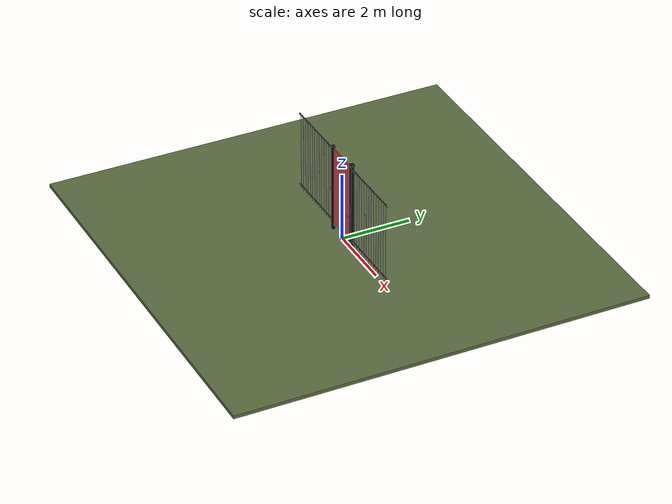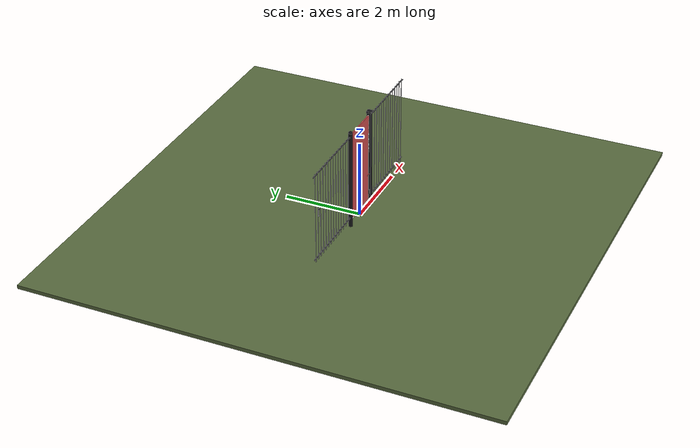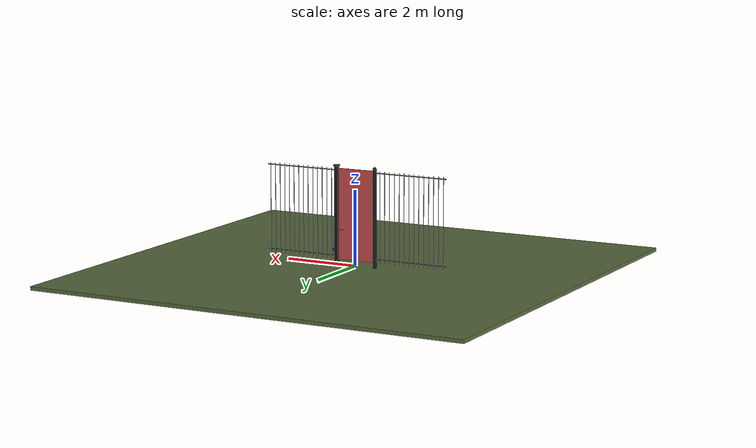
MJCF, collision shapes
<?xml version="1.0" ?>
<mujoco model="db0985_gate_swing_full">
  <compiler angle="radian" meshdir="../../hardware" texturedir="../../textures" autolimits="true" inertiafromgeom="false"/>
  <option timestep="0.002" integrator="implicitfast" cone="elliptic" impratio="10" noslip_iterations="3">
    <flag multiccd="enable"/>
  </option>
  <size memory="16M"/>
  <default>
    <geom condim="4" solref="0.005 1" solimp="0.95 0.99 0.001"/>
    <joint solreflimit="0.005 1" solimplimit="0.95 0.99 0.001"/>
    <tendon solreflimit="0.005 1"/>
    <equality solref="0.002 1"/>
  </default>
  <visual>
    <headlight ambient="0.4 0.4 0.4" diffuse="0.7 0.7 0.7" specular="0.2 0.2 0.2"/>
    <quality shadowsize="4096"/>
    <map znear="0.01" zfar="60"/>
  </visual>
  <asset>
    <mesh name="ring_cc5c941a8a" file="ring_cc5c941a8a.obj"/>
    <mesh name="strap_hinge_78d1bbb966" file="strap_hinge_78d1bbb966.obj"/>
    <material name="mat_floor" rgba="0.35 0.42 0.25 1" specular="0.2" shininess="0.15" reflectance="0"/>
    <material name="mat_wall" rgba="0.78 0.76 0.7 1" specular="0.2" shininess="0.1" reflectance="0"/>
    <material name="mat_leaf" rgba="0.93 0.93 0.91 1" specular="0.23" shininess="0.37" reflectance="0.02"/>
    <material name="mat_hinge" rgba="0.65 0.66 0.68 1" specular="0.74" shininess="0.5" reflectance="0.36"/>
    <material name="mat_op_wrought_iron" rgba="0.08 0.08 0.09 1" specular="0.56" shininess="0.25" reflectance="0.24"/>
    <material name="mat_frame" rgba="0.08 0.08 0.09 1" specular="0.56" shininess="0.25" reflectance="0.24"/>
    <material name="mat_bumper_stop" rgba="0.08 0.08 0.08 1" specular="0.2" shininess="0.1" reflectance="0"/>
    <material name="mat_stop_base" rgba="0.9 0.9 0.92 1" specular="0.8" shininess="0.9" reflectance="0.4"/>
    <texture name="skybox" type="skybox" builtin="gradient" rgb1="0.6 0.7 0.85" rgb2="0.9 0.92 0.95" width="256" height="256"/>
  </asset>
  <worldbody>
    <light name="sun" pos="1.5 -2.5 4" dir="-0.3 0.5 -0.8" directional="true" diffuse="0.8 0.8 0.8" specular="0.3 0.3 0.3" castshadow="true"/>
    <light name="fill" pos="-1.5 2.5 3" dir="0.3 -0.5 -0.7" directional="true" diffuse="0.35 0.35 0.4" castshadow="false"/>
    <camera name="robot_view" pos="0 -2.89375 2.02025" xyaxes="1 0 0 0 0.26963 0.962964" fovy="52"/>
    <camera name="far_view" pos="0 2.89375 2.02025" xyaxes="-1 0 0 0 -0.26963 0.962964" fovy="52"/>
    <camera name="iso" pos="2.19925 -2.43075 2.48325" xyaxes="0.741536 0.670913 0 -0.242917 0.268487 0.932151" fovy="46"/>
    <camera name="detail_handle" pos="0.572 -0.8445 1.22" xyaxes="0.97561 0.219512 0 -0.070934 0.315262 0.94635" fovy="38"/>
    <geom name="floor" type="box" size="6 6 0.05" pos="0 0 -0.05" material="mat_floor" group="0" contype="1" conaffinity="1" friction="0.8 0.005 0.0001" density="2400"/>
    <geom name="hinge_pintle_0" type="cylinder" size="0.008 0.02" pos="-0.503 0.05 0.274" material="mat_hinge" group="1" contype="0" conaffinity="0" density="7850"/>
    <geom name="hinge_pintle_1" type="cylinder" size="0.008 0.02" pos="-0.503 0.05 2.374" material="mat_hinge" group="1" contype="0" conaffinity="0" density="7850"/>
    <geom name="post_hinge" type="cylinder" size="0.05 1.3" pos="-0.556 0 1.3" material="mat_frame" group="0" contype="1" conaffinity="1" friction="0.6 0.005 0.0001" density="800"/>
    <geom name="post_hinge_cap" type="sphere" size="0.05" pos="-0.556 0 2.6" material="mat_frame" group="1" contype="0" conaffinity="0" density="800"/>
    <geom name="post_latch" type="box" size="0.05 0.05 1.3" pos="0.556 0 1.3" material="mat_frame" group="0" contype="1" conaffinity="1" friction="0.6 0.005 0.0001" density="800"/>
    <geom name="post_latch_cap" type="box" size="0.065 0.065 0.02" pos="0.556 0 2.62" material="mat_frame" group="1" contype="0" conaffinity="0" density="800"/>
    <geom name="gate_stop" type="box" size="0.02 0.012 0.06" pos="0.486 -0.0245 0.4" material="mat_frame" group="0" contype="1" conaffinity="1" friction="0.6 0.005 0.0001" density="800"/>
    <geom name="door_stop_base" type="cylinder" size="0.022 0.003" pos="-0.4885 0.9 0.003" material="mat_stop_base" group="0" contype="1" conaffinity="1" friction="0.6 0.005 0.0001" density="7850"/>
    <geom name="door_stop_post" type="cylinder" size="0.012 0.092" pos="-0.4885 0.9 0.098" material="mat_stop_base" group="0" contype="1" conaffinity="1" friction="0.6 0.005 0.0001" density="7850"/>
    <geom name="door_stop_bumper" type="cylinder" size="0.022 0.02" pos="-0.4885 0.9 0.21" material="mat_bumper_stop" group="0" contype="1" conaffinity="1" friction="0.6 0.005 0.0001" density="1100"/>
    <geom name="fence_bar_l_0" type="cylinder" size="0.008 1.2" pos="-0.706 0 1.35" material="mat_frame" group="0" contype="1" conaffinity="1" friction="0.6 0.005 0.0001" density="7850"/>
    <geom name="fence_bar_l_1" type="cylinder" size="0.008 1.2" pos="-0.846 0 1.35" material="mat_frame" group="0" contype="1" conaffinity="1" friction="0.6 0.005 0.0001" density="7850"/>
    <geom name="fence_bar_l_2" type="cylinder" size="0.008 1.2" pos="-0.986 0 1.35" material="mat_frame" group="0" contype="1" conaffinity="1" friction="0.6 0.005 0.0001" density="7850"/>
    <geom name="fence_bar_l_3" type="cylinder" size="0.008 1.2" pos="-1.126 0 1.35" material="mat_frame" group="0" contype="1" conaffinity="1" friction="0.6 0.005 0.0001" density="7850"/>
    <geom name="fence_bar_l_4" type="cylinder" size="0.008 1.2" pos="-1.266 0 1.35" material="mat_frame" group="0" contype="1" conaffinity="1" friction="0.6 0.005 0.0001" density="7850"/>
    <geom name="fence_bar_l_5" type="cylinder" size="0.008 1.2" pos="-1.406 0 1.35" material="mat_frame" group="0" contype="1" conaffinity="1" friction="0.6 0.005 0.0001" density="7850"/>
    <geom name="fence_bar_l_6" type="cylinder" size="0.008 1.2" pos="-1.546 0 1.35" material="mat_frame" group="0" contype="1" conaffinity="1" friction="0.6 0.005 0.0001" density="7850"/>
    <geom name="fence_bar_l_7" type="cylinder" size="0.008 1.2" pos="-1.686 0 1.35" material="mat_frame" group="0" contype="1" conaffinity="1" friction="0.6 0.005 0.0001" density="7850"/>
    <geom name="fence_bar_l_8" type="cylinder" size="0.008 1.2" pos="-1.826 0 1.35" material="mat_frame" group="0" contype="1" conaffinity="1" friction="0.6 0.005 0.0001" density="7850"/>
    <geom name="fence_bar_l_9" type="cylinder" size="0.008 1.2" pos="-1.966 0 1.35" material="mat_frame" group="0" contype="1" conaffinity="1" friction="0.6 0.005 0.0001" density="7850"/>
    <geom name="fence_bar_l_10" type="cylinder" size="0.008 1.2" pos="-2.106 0 1.35" material="mat_frame" group="0" contype="1" conaffinity="1" friction="0.6 0.005 0.0001" density="7850"/>
    <geom name="fence_bar_l_11" type="cylinder" size="0.008 1.2" pos="-2.246 0 1.35" material="mat_frame" group="0" contype="1" conaffinity="1" friction="0.6 0.005 0.0001" density="7850"/>
    <geom name="fence_bar_l_12" type="cylinder" size="0.008 1.2" pos="-2.386 0 1.35" material="mat_frame" group="0" contype="1" conaffinity="1" friction="0.6 0.005 0.0001" density="7850"/>
    <geom name="fence_bar_l_13" type="cylinder" size="0.008 1.2" pos="-2.526 0 1.35" material="mat_frame" group="0" contype="1" conaffinity="1" friction="0.6 0.005 0.0001" density="7850"/>
    <geom name="fence_rail_l" type="box" size="1 0.012 0.012" pos="-1.606 0 2.5" material="mat_frame" group="0" contype="1" conaffinity="1" friction="0.6 0.005 0.0001" density="7850"/>
    <geom name="fence_rail_b_l" type="box" size="1 0.012 0.012" pos="-1.606 0 0.25" material="mat_frame" group="0" contype="1" conaffinity="1" friction="0.6 0.005 0.0001" density="7850"/>
    <geom name="fence_bar_r_0" type="cylinder" size="0.008 1.2" pos="0.706 0 1.35" material="mat_frame" group="0" contype="1" conaffinity="1" friction="0.6 0.005 0.0001" density="7850"/>
    <geom name="fence_bar_r_1" type="cylinder" size="0.008 1.2" pos="0.846 0 1.35" material="mat_frame" group="0" contype="1" conaffinity="1" friction="0.6 0.005 0.0001" density="7850"/>
    <geom name="fence_bar_r_2" type="cylinder" size="0.008 1.2" pos="0.986 0 1.35" material="mat_frame" group="0" contype="1" conaffinity="1" friction="0.6 0.005 0.0001" density="7850"/>
    <geom name="fence_bar_r_3" type="cylinder" size="0.008 1.2" pos="1.126 0 1.35" material="mat_frame" group="0" contype="1" conaffinity="1" friction="0.6 0.005 0.0001" density="7850"/>
    <geom name="fence_bar_r_4" type="cylinder" size="0.008 1.2" pos="1.266 0 1.35" material="mat_frame" group="0" contype="1" conaffinity="1" friction="0.6 0.005 0.0001" density="7850"/>
    <geom name="fence_bar_r_5" type="cylinder" size="0.008 1.2" pos="1.406 0 1.35" material="mat_frame" group="0" contype="1" conaffinity="1" friction="0.6 0.005 0.0001" density="7850"/>
    <geom name="fence_bar_r_6" type="cylinder" size="0.008 1.2" pos="1.546 0 1.35" material="mat_frame" group="0" contype="1" conaffinity="1" friction="0.6 0.005 0.0001" density="7850"/>
    <geom name="fence_bar_r_7" type="cylinder" size="0.008 1.2" pos="1.686 0 1.35" material="mat_frame" group="0" contype="1" conaffinity="1" friction="0.6 0.005 0.0001" density="7850"/>
    <geom name="fence_bar_r_8" type="cylinder" size="0.008 1.2" pos="1.826 0 1.35" material="mat_frame" group="0" contype="1" conaffinity="1" friction="0.6 0.005 0.0001" density="7850"/>
    <geom name="fence_bar_r_9" type="cylinder" size="0.008 1.2" pos="1.966 0 1.35" material="mat_frame" group="0" contype="1" conaffinity="1" friction="0.6 0.005 0.0001" density="7850"/>
    <geom name="fence_bar_r_10" type="cylinder" size="0.008 1.2" pos="2.106 0 1.35" material="mat_frame" group="0" contype="1" conaffinity="1" friction="0.6 0.005 0.0001" density="7850"/>
    <geom name="fence_bar_r_11" type="cylinder" size="0.008 1.2" pos="2.246 0 1.35" material="mat_frame" group="0" contype="1" conaffinity="1" friction="0.6 0.005 0.0001" density="7850"/>
    <geom name="fence_bar_r_12" type="cylinder" size="0.008 1.2" pos="2.386 0 1.35" material="mat_frame" group="0" contype="1" conaffinity="1" friction="0.6 0.005 0.0001" density="7850"/>
    <geom name="fence_bar_r_13" type="cylinder" size="0.008 1.2" pos="2.526 0 1.35" material="mat_frame" group="0" contype="1" conaffinity="1" friction="0.6 0.005 0.0001" density="7850"/>
    <geom name="fence_rail_r" type="box" size="1 0.012 0.012" pos="1.606 0 2.5" material="mat_frame" group="0" contype="1" conaffinity="1" friction="0.6 0.005 0.0001" density="7850"/>
    <geom name="fence_rail_b_r" type="box" size="1 0.012 0.012" pos="1.606 0 0.25" material="mat_frame" group="0" contype="1" conaffinity="1" friction="0.6 0.005 0.0001" density="7850"/>
    <geom name="gate_stop_strap_0" type="box" size="0.0965 0.01505 0.048" pos="0.602 -0.01905 0.4" material="mat_frame" group="1" contype="0" conaffinity="0" density="7850"/>
    <site name="approach_point" pos="0 -1.5 0" quat="1 0 0 0" size="0.05" rgba="0.2 0.9 0.2 0.5" group="4"/>
    <site name="goal_point" pos="0 1.5 0" quat="1 0 0 0" size="0.05" rgba="0.2 0.9 0.2 0.5" group="4"/>
    <site name="door_plane_center" pos="0 0 1.21" quat="1 0 0 0" size="0.02" rgba="0.2 0.9 0.2 0.5" group="4"/>
    <body name="leaf" pos="-0.506 0 0">
      <inertial pos="0.495744 0.000584 1.346461" mass="69.14" quat="-0.498463 0.499796 0.500214 0.501523" diaginertia="5.948205208 34.254875479 40.191057987"/>
      <joint name="leaf_hinge" type="hinge" axis="0 0 1" pos="0.003 0.05 0" limited="true" range="0 1.570796" damping="0.48344" frictionloss="2.868596" armature="0.02"/>
      <geom name="leaf_slab_col" type="box" size="0.5 0.0125 1.2" pos="0.503 0 1.35" material="mat_leaf" group="3" contype="1" conaffinity="1" rgba="0.8 0.3 0.3 0.25" friction="0.45 0.005 0.0001" density="1"/>
      <geom name="leaf_rail_b" type="box" size="0.5 0.0125 0.0225" pos="0.503 0 0.1725" material="mat_leaf" group="1" contype="0" conaffinity="0" density="1"/>
      <geom name="leaf_rail_t" type="box" size="0.5 0.0125 0.0225" pos="0.503 0 2.5275" material="mat_leaf" group="1" contype="0" conaffinity="0" density="1"/>
      <geom name="leaf_stile_h" type="box" size="0.0225 0.0125 1.2" pos="0.0255 0 1.35" material="mat_leaf" group="1" contype="0" conaffinity="0" density="1"/>
      <geom name="leaf_stile_l" type="box" size="0.0225 0.0125 1.2" pos="0.9805 0 1.35" material="mat_leaf" group="1" contype="0" conaffinity="0" density="1"/>
      <geom name="leaf_bar_0" type="cylinder" size="0.0095 1.155" pos="0.113 0 1.35" material="mat_leaf" group="1" contype="0" conaffinity="0" density="1"/>
      <geom name="leaf_bar_1" type="cylinder" size="0.0095 1.155" pos="0.243 0 1.35" material="mat_leaf" group="1" contype="0" conaffinity="0" density="1"/>
      <geom name="leaf_bar_2" type="cylinder" size="0.0095 1.155" pos="0.373 0 1.35" material="mat_leaf" group="1" contype="0" conaffinity="0" density="1"/>
      <geom name="leaf_bar_3" type="cylinder" size="0.0095 1.155" pos="0.503 0 1.35" material="mat_leaf" group="1" contype="0" conaffinity="0" density="1"/>
      <geom name="leaf_bar_4" type="cylinder" size="0.0095 1.155" pos="0.633 0 1.35" material="mat_leaf" group="1" contype="0" conaffinity="0" density="1"/>
      <geom name="leaf_bar_5" type="cylinder" size="0.0095 1.155" pos="0.763 0 1.35" material="mat_leaf" group="1" contype="0" conaffinity="0" density="1"/>
      <geom name="leaf_bar_6" type="cylinder" size="0.0095 1.155" pos="0.893 0 1.35" material="mat_leaf" group="1" contype="0" conaffinity="0" density="1"/>
      <geom name="hinge_strap_0" type="mesh" mesh="strap_hinge_78d1bbb966" pos="0.003 0.0155 0.3" material="mat_hinge" group="1" contype="0" conaffinity="0" density="7850"/>
      <geom name="hinge_strap_eye_0" type="cylinder" size="0.011 0.012" pos="0.003 0.05 0.3" material="mat_hinge" group="1" contype="0" conaffinity="0" density="7850"/>
      <geom name="hinge_strap_neck_0" type="box" size="0.012 0.02125 0.006" pos="0.003 0.03275 0.3" material="mat_hinge" group="1" contype="0" conaffinity="0" density="7850"/>
      <geom name="hinge_strap_1" type="mesh" mesh="strap_hinge_78d1bbb966" pos="0.003 0.0155 2.4" material="mat_hinge" group="1" contype="0" conaffinity="0" density="7850"/>
      <geom name="hinge_strap_eye_1" type="cylinder" size="0.011 0.012" pos="0.003 0.05 2.4" material="mat_hinge" group="1" contype="0" conaffinity="0" density="7850"/>
      <geom name="hinge_strap_neck_1" type="box" size="0.012 0.02125 0.006" pos="0.003 0.03275 2.4" material="mat_hinge" group="1" contype="0" conaffinity="0" density="7850"/>
      <geom name="leaf_ring_pull_n" type="mesh" mesh="ring_cc5c941a8a" pos="0.898 -0.0125 1" quat="0.707107 0.707107 0 0" material="mat_op_wrought_iron" group="1" contype="0" conaffinity="0" density="3000"/>
      <geom name="leaf_ring_pull_col_n" type="capsule" size="0.008 0.05" pos="0.898 -0.0445 0.94" quat="0.707107 0 0.707107 0" material="mat_op_wrought_iron" group="3" contype="1" conaffinity="1" rgba="0.8 0.3 0.3 0.25" friction="0.7 0.01 0.0001" density="3000"/>
      <geom name="leaf_ring_pull_p" type="mesh" mesh="ring_cc5c941a8a" pos="0.898 0.0125 1" quat="-0.707107 0.707107 0 0" material="mat_op_wrought_iron" group="1" contype="0" conaffinity="0" density="3000"/>
      <geom name="leaf_ring_pull_col_p" type="capsule" size="0.008 0.05" pos="0.898 0.0445 0.94" quat="0.707107 0 0.707107 0" material="mat_op_wrought_iron" group="3" contype="1" conaffinity="1" rgba="0.8 0.3 0.3 0.25" friction="0.7 0.01 0.0001" density="3000"/>
      <site name="leaf_ring_pull_grip_n" pos="0.898 -0.0445 0.94" quat="1 0 0 0" size="0.012" rgba="0.2 0.9 0.2 0.5" group="4"/>
      <site name="leaf_ring_pull_grip_p" pos="0.898 0.0445 0.94" quat="1 0 0 0" size="0.012" rgba="0.2 0.9 0.2 0.5" group="4"/>
      <site name="leaf_edge_mid" pos="1.003 0 1.2" quat="1 0 0 0" size="0.02" rgba="0.2 0.9 0.2 0.5" group="4"/>
    </body>
  </worldbody>
  <sensor>
    <jointpos name="leaf_hinge_pos" joint="leaf_hinge"/>
    <jointvel name="leaf_hinge_vel" joint="leaf_hinge"/>
  </sensor>
</mujoco>
